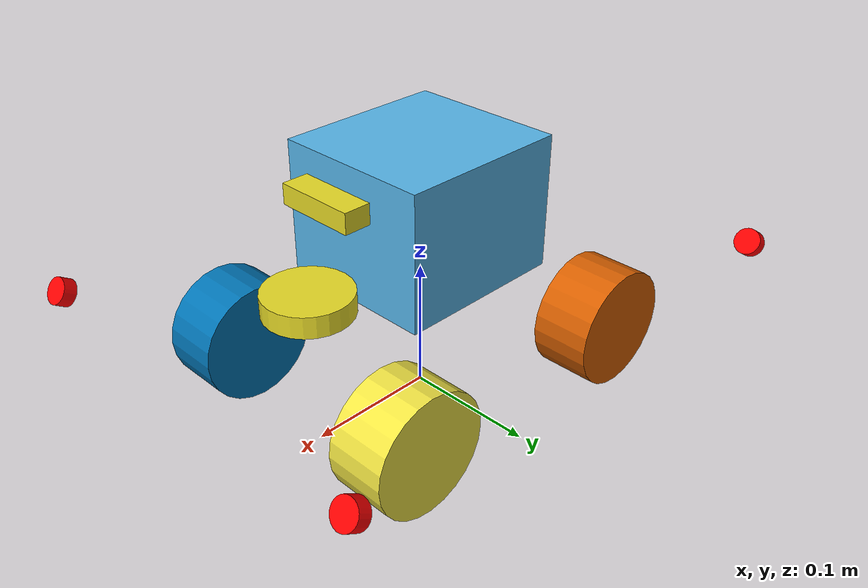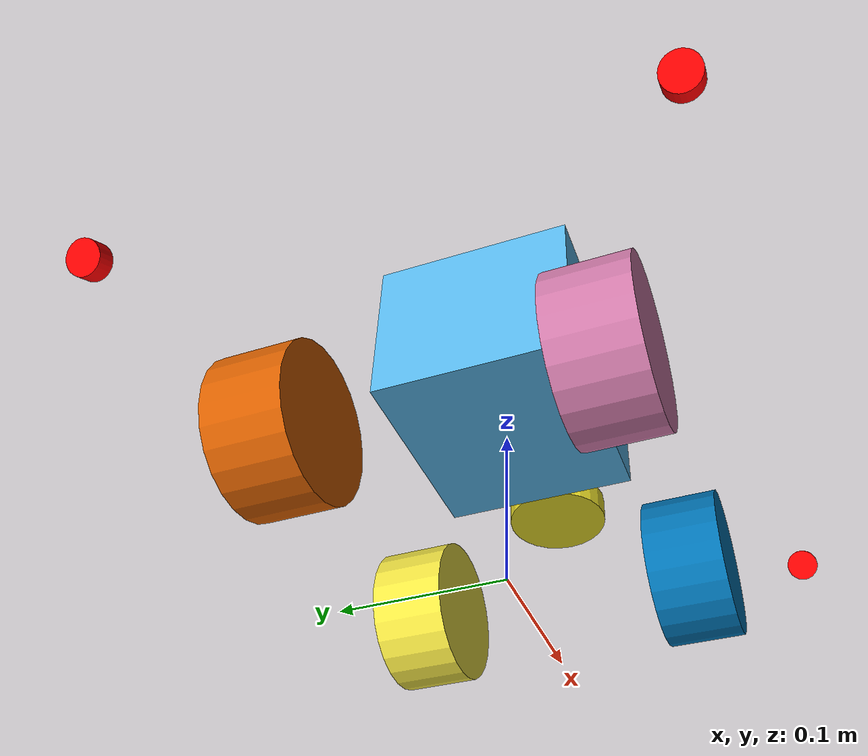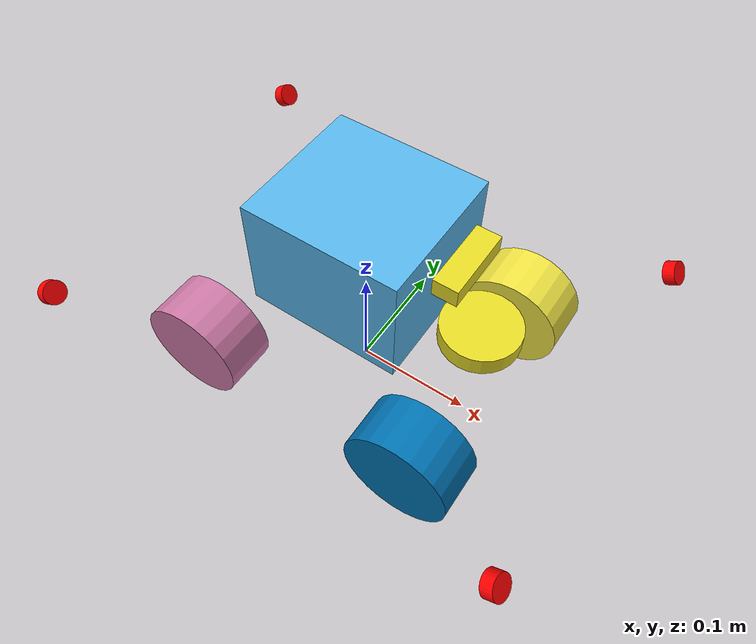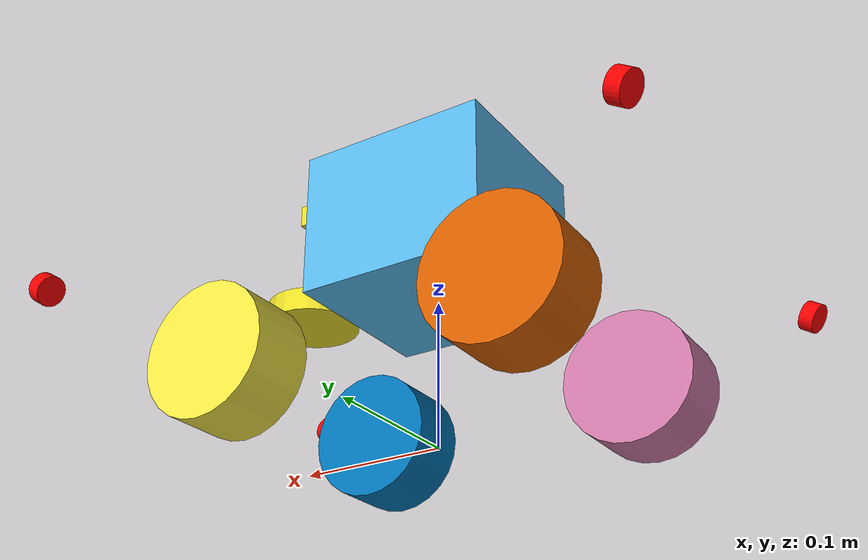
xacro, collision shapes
<?xml version="1.0"?>

<robot name="limo_four_diff" xmlns:xacro="http://ros.org/wiki/xacro">

    <xacro:include filename="$(find limo_description)/urdf/limo_xacro.xacro" />
    <xacro:include filename="$(find limo_description)/urdf/limo_four_diff.gazebo" />

    <!-- Variables -->
    <xacro:property name="M_PI" value="3.14159"/>

    <!-- Vehicle Geometries -->
    <xacro:property name="base_x_size" value="0.13" />
    <xacro:property name="base_y_size" value="0.12" />
    <xacro:property name="base_z_size" value="0.1" />

    <xacro:property name="wheelbase" value="0.2"/>
    <xacro:property name="track" value="0.13"/>
    <xacro:property name="wheel_vertical_offset" value="-0.10" />
    <xacro:property name="base_mass" value="2.1557"/>

    <xacro:property name="wheel_length" value="0.045" />
    <xacro:property name="wheel_radius" value="0.045" />
  <link name="base_footprint"/>

  <joint name="base_joint" type="fixed">
    <parent link="base_footprint"/>
    <child link="base_link"/>
    <origin xyz="0.0 0.0 0.15" rpy="0 0 0"/>
  </joint>
    <!-- Base link -->
    <link name="base_link">
        <visual>
            <origin xyz="0 0 -0.15" rpy="0 0 1.57" />
            <geometry>
                <mesh filename="package://limo_description/meshes/limo_base.dae" scale="1 1 1"/>
            </geometry>
        </visual>
        <collision>
            <!--origin xyz="0 0 -0.15" rpy="0 0 1.57" /-->
            <origin xyz="0 0 0" rpy="0 0 0" />
          <geometry>
              <box size="${base_x_size} ${base_y_size} ${base_z_size}"/>
          </geometry>
        </collision>
    </link>

    <link name="inertial_link">
        <inertial>
            <origin xyz="0.0 0.0 0.0" />
            <mass value="${base_mass}" />
            <inertia ixx="0.24" ixy="0" ixz="0"
                     iyy="0.96" iyz="0"
                     izz="0.96" />
        </inertial>
    </link>

    <joint name="inertial_joint" type="fixed">
        <origin xyz="0 0 0" rpy="0 0 0" />
        <parent link="base_link" />
        <child link="inertial_link" />
    </joint>
<link name="bumper_link">
    <inertial>
        <origin xyz="0.0 0.0 0.0" rpy="0 1.0 0"/>
        <mass value="0.0000000001"/>
        <inertia ixx="0.00000001" ixy="0.00000001" ixz="0.00000001" iyy="0.00000001" iyz="0.00000001" izz="0.00000001"/>
    </inertial>
    <visual>
        <origin xyz="0.0 0.0 0.0" rpy="0.0 1.0 0"/>
        <geometry>
            <cylinder radius="0.01" length="0.01"/>
        </geometry>
        <material name="red">
            <color rgba="1.0 0.0 0.0 1.0"/>
        </material>
    </visual>
    <collision name="base_collision">
        <origin xyz="0.0 0.0 0.0" rpy="0.0 1.0 0.0"/>
        <geometry>
            <cylinder radius="0.01" length="0.01"/>
        </geometry>
    </collision>
  </link>
  <joint name="bumper_joint" type="fixed">
      <origin xyz="0.2 0.15 -0.05" rpy="0.0 0.0 0.0"/>
      <parent link="base_link"/>
      <child link="bumper_link"/>
  </joint>
  <link name="bumper_1_link">
    <inertial>
        <origin xyz="0.0 0.0 0.0" rpy="0 1.0 0"/>
        <mass value="0.0000000001"/>
        <inertia ixx="0.00000001" ixy="0.00000001" ixz="0.00000001" iyy="0.00000001" iyz="0.00000001" izz="0.00000001"/>
    </inertial>
    <visual>
        <origin xyz="0.0 0.0 0.0" rpy="0.0 1.0 0"/>
        <geometry>
            <cylinder radius="0.01" length="0.01"/>
        </geometry>
        <material name="red">
            <color rgba="1.0 0.0 0.0 1.0"/>
        </material>
    </visual>
    <collision name="base_collision">
        <origin xyz="0.0 0.0 0.0" rpy="0.0 1.0 0.0"/>
        <geometry>
            <cylinder radius="0.01" length="0.01"/>
        </geometry>
    </collision>
  </link>
  <joint name="bumper_1_joint" type="fixed">
      <origin xyz="-0.2 0.15 -0.05" rpy="0.0 0.0 0.0"/>
      <parent link="base_link"/>
      <child link="bumper_1_link"/>
    </joint>
    <link name="bumper_2_link">
    <inertial>
        <origin xyz="0.0 0.0 0.0" rpy="0 1.0 0"/>
        <mass value="0.0000000001"/>
        <inertia ixx="0.00000001" ixy="0.00000001" ixz="0.00000001" iyy="0.00000001" iyz="0.00000001" izz="0.00000001"/>
    </inertial>
    <visual>
        <origin xyz="0.0 0.0 0.0" rpy="0.0 1.0 0"/>
        <geometry>
            <cylinder radius="0.01" length="0.01"/>
        </geometry>
        <material name="red">
            <color rgba="1.0 0.0 0.0 1.0"/>
        </material>
    </visual>
    <collision name="base_collision">
        <origin xyz="0.0 0.0 0.0" rpy="0.0 1.0 0.0"/>
        <geometry>
            <cylinder radius="0.01" length="0.01"/>
        </geometry>
    </collision>
  </link>
  <joint name="bumper_2_joint" type="fixed">
      <origin xyz="0.2 -0.15 -0.05" rpy="0.0 0.0 0.0"/>
      <parent link="base_link"/>
      <child link="bumper_2_link"/>
    </joint>
      <link name="bumper_3_link">
    <inertial>
        <origin xyz="0.0 0.0 0.0" rpy="0 1.0 0"/>
        <mass value="0.0000000001"/>
        <inertia ixx="0.00000001" ixy="0.00000001" ixz="0.00000001" iyy="0.00000001" iyz="0.00000001" izz="0.00000001"/>
    </inertial>
    <visual>
        <origin xyz="0.0 0.0 0.0" rpy="0.0 1.0 0"/>
        <geometry>
            <cylinder radius="0.01" length="0.01"/>
        </geometry>
        <material name="red">
            <color rgba="1.0 0.0 0.0 1.0"/>
        </material>
    </visual>
    <collision name="base_collision">
        <origin xyz="0.0 0.0 0.0" rpy="0.0 1.0 0.0"/>
        <geometry>
            <cylinder radius="0.01" length="0.01"/>
        </geometry>
    </collision>
  </link>
  <joint name="bumper_3_joint" type="fixed">
      <origin xyz="-0.2 -0.15 -0.05" rpy="0.0 0.0 0.0"/>
      <parent link="base_link"/>
      <child link="bumper_3_link"/>
    </joint>
    <xacro:limo_laser parent_prefix="base_link" frame_prefix="laser">
        <origin xyz="0.103 0 -0.034" rpy="0 0 0"/>
    </xacro:limo_laser>

    <xacro:limo_depth_camera parent_prefix="base_link" frame_prefix="depth_camera">
        <origin xyz="0.084 0 0.03" rpy="0 0 0"/>
    </xacro:limo_depth_camera>

    <xacro:limo_imu parent_prefix="base_link" frame_prefix="imu">
        <origin xyz="0.0 0 -0.1" rpy="0 0 0"/>
    </xacro:limo_imu>

    <xacro:limo_wheel parent_prefix="base_link" wheel_prefix="front_left" reflect="1">
        <origin xyz="${wheelbase/2} ${track/2} ${wheel_vertical_offset}" rpy="0 0  0" />
    </xacro:limo_wheel>

    <xacro:limo_wheel parent_prefix="base_link" wheel_prefix="front_right" reflect="-1">
        <origin xyz="${wheelbase/2} ${-track/2} ${wheel_vertical_offset}" rpy="${M_PI} 0 0" />
    </xacro:limo_wheel>

    <xacro:limo_wheel parent_prefix="base_link" wheel_prefix="rear_left" reflect="1">
        <origin xyz="${-wheelbase/2} ${track/2} ${wheel_vertical_offset}" rpy="0 0 0" />
    </xacro:limo_wheel>

    <xacro:limo_wheel parent_prefix="base_link" wheel_prefix="rear_right" reflect="-1">
        <origin xyz="${-wheelbase/2} ${-track/2} ${wheel_vertical_offset}" rpy="${M_PI} 0 0" />
    </xacro:limo_wheel>
</robot>

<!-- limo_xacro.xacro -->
<robot name="limo_xacro" xmlns:xacro="http://ros.org/wiki/xacro">
    <xacro:macro name="limo_wheel" params="parent_prefix wheel_prefix reflect *joint_pose">
        <link name="${wheel_prefix}_wheel_link">
            <inertial>
                <origin xyz="0 0 0" />
                <mass value="0.5" />
                <inertia ixx="0.01055" ixy="0" ixz="0" iyy="0.00075" iyz="0" izz="0.01055" />
            </inertial>
            <visual>
                <origin xyz="0 0 0" rpy="0 0 0" />
                <geometry>
                    <mesh filename="package://limo_description/meshes/limo_wheel.dae" />
                </geometry>
            </visual>
            <collision>
              <origin xyz="0 ${wheel_length/2} 0" rpy="1.57 0 0" />
              <geometry>
                  <cylinder length="${wheel_length}" radius="${wheel_radius}" />
              </geometry>
            </collision>
        </link>

        <joint name="${wheel_prefix}_wheel" type="continuous">
            <parent link="${parent_prefix}"/>
            <child link="${wheel_prefix}_wheel_link"/>
            <xacro:insert_block name="joint_pose"/>
            <axis xyz="0 ${reflect*1} 0"/>
        </joint>
    </xacro:macro>

    <xacro:macro name="limo_laser" params="parent_prefix frame_prefix *joint_pose">
        <link name='${frame_prefix}_link'>
            <pose>0 0 0 0 0 0</pose>
            <inertial>
                <mass value="0.1"/>
                <origin xyz="0.0 0 0" rpy="0 0 0"/>
                <inertia
                    ixx="1e-6" ixy="0" ixz="0"
                    iyy="1e-6" iyz="0"
                    izz="1e-6"
                />
            </inertial>
            <visual name='laser_visual'>
                <origin xyz="0 0 0" rpy="0 0 0"/>
                <geometry>
                    <cylinder radius="0.02" length="0.01"/>
                </geometry>
                <material name='laser_material'>
                    <ambient>0.1 0.1 0.1 1</ambient>
                    <diffuse>0.1 0.1 0.2 1</diffuse>
                    <specular>0 0 0 0</specular>
                    <emissive>0 0 0 1</emissive>
                </material>
            </visual>
            <collision name='laser_collision'>
                <origin xyz="0 0 0" rpy="0 0 0"/>
                <geometry>
                    <cylinder radius="0.032" length="0.016"/>
                </geometry>
            </collision>
        </link>
        <joint type="fixed" name="laser_joint">
            <xacro:insert_block name="joint_pose"/>
            <child link="${frame_prefix}_link"/>
            <parent link="${parent_prefix}"/>
        </joint>
        <gazebo reference="${frame_prefix}_link">
            <material>Gazebo/Yellow</material>
        </gazebo>
    </xacro:macro>

    <xacro:macro name="limo_depth_camera" params="parent_prefix frame_prefix *joint_pose">
        <link name='${frame_prefix}_link'>
            <pose>0 0 0 0 0 0</pose>
            <inertial>
                <mass value="0.1"/>
                <origin xyz="0.0 0 0" rpy="0 0 0"/>
                <inertia
                    ixx="1e-6" ixy="0" ixz="0"
                    iyy="1e-6" iyz="0"
                    izz="1e-6"
                />
            </inertial>
            <visual name='depth_camera_visual'>
                <origin xyz="0 0 0" rpy="0 0 0"/>
                <geometry>
                    <box size="0.02 0.06 0.015"/>
                </geometry>
                <material name='depth_camera_material'>
                    <ambient>0.1 0.1 0.1 1</ambient>
                    <diffuse>0.1 0.1 0.2 1</diffuse>
                    <specular>0 0 0 0</specular>
                    <emissive>0 0 0 1</emissive>
                </material>
            </visual>
            <collision name='depth_camera_collision'>
                <origin xyz="0 0 0" rpy="0 0 0"/>
                <geometry>
                    <box size="0.02 0.06 0.015"/>
                </geometry>
            </collision>
        </link>

        <joint type="fixed" name="depth_camera_joint">
            <xacro:insert_block name="joint_pose"/>
            <child link="${frame_prefix}_link"/>
            <parent link="${parent_prefix}"/>
        </joint>
        <link name="depth_link"></link>

        <joint name="${frame_prefix}_to_camera_joint" type="fixed">
            <origin xyz="0 0 0" rpy="${-M_PI/2} 0 ${-M_PI/2} "/>
            <parent link="${frame_prefix}_link"/>
            <child link="depth_link"/>
          </joint>

        <gazebo reference="${frame_prefix}_link">
            <material>Gazebo/Yellow</material>
        </gazebo>
    </xacro:macro>

    <xacro:macro name="limo_imu" params="parent_prefix frame_prefix  *joint_pose">
        <link name='${frame_prefix}_link'>
            <pose>0 0 0 0 0 0</pose>
            <inertial>
                <mass value="0.01"/>
                <origin xyz="0.0 0 0" rpy="0 0 0"/>
                <inertia
                    ixx="1e-7" ixy="0" ixz="0"
                    iyy="1e-7" iyz="0"
                    izz="1e-7"
                />
            </inertial>
            <visual name='imu_visual'>
                <origin xyz="0 0 0" rpy="0 0 0"/>
                <geometry>
                    <box size="0.001 0.001 0.001"/>
                </geometry>
                <material name='imu_material'>
                    <ambient>0.1 0.1 0.1 1</ambient>
                    <diffuse>0.1 0.1 0.2 1</diffuse>
                    <specular>0 0 0 0</specular>
                    <emissive>0 0 0 1</emissive>
                </material>
            </visual>
            <collision name='imu_collision'>
                <origin xyz="0 0 0" rpy="0 0 0"/>
                <geometry>
                    <box size="0.001 0.001 0.001"/>
                </geometry>
            </collision>
        </link>
        <joint type="fixed" name="imu_joint">
            <xacro:insert_block name="joint_pose"/>
            <child link="${frame_prefix}_link"/>
            <parent link="${parent_prefix}"/>
        </joint>
        <gazebo reference="${frame_prefix}_link">
            <material>Gazebo/Yellow</material>
        </gazebo>
    </xacro:macro>

    <gazebo reference="bumper_link">
    <sensor name="contacts_1" type="contact">
        <contact>
          <collision>base_footprint_fixed_joint_lump__base_collision_collision_1</collision>
        </contact>
        <plugin name="gazebo_ros_bumper_controller" filename="libgazebo_ros_bumper.so">
          <always_on>true</always_on>
          <robotNamespace>/limo</robotNamespace>
          <bumperTopicName>bumper_states</bumperTopicName>
          <frameName>bumper</frameName>
          <visualize>true</visualize>
          <update_rate>50.0</update_rate>
        </plugin>
    </sensor>
    <material>Gazebo/Red</material>
    <mu1>0.1</mu1>
    <mu2>0.1</mu2>
    <gravity>true</gravity>
    <selfCollide>false</selfCollide>
  </gazebo>
  <gazebo reference="bumper_1_link">
    <sensor name="contacts_2" type="contact">
        <contact>
          <collision>base_footprint_fixed_joint_lump__base_collision_collision_2</collision>
        </contact>
        <plugin name="gazebo_ros_bumper_controller" filename="libgazebo_ros_bumper.so">
          <always_on>true</always_on>
          <robotNamespace>/limo</robotNamespace>
          <bumperTopicName>bumper_states_1</bumperTopicName>
          <frameName>bumper_1</frameName>
          <visualize>true</visualize>
          <update_rate>50.0</update_rate>
        </plugin>
    </sensor>
    <material>Gazebo/Red</material>
    <mu1>0.1</mu1>
    <mu2>0.1</mu2>
    <gravity>true</gravity>
    <selfCollide>false</selfCollide>
  </gazebo>
    <gazebo reference="bumper_2_link">
    <sensor name="contacts_3" type="contact">
        <contact>
          <collision>base_footprint_fixed_joint_lump__base_collision_collision_3</collision>
        </contact>
        <plugin name="gazebo_ros_bumper_controller" filename="libgazebo_ros_bumper.so">
          <always_on>true</always_on>
          <robotNamespace>/limo</robotNamespace>
          <bumperTopicName>bumper_states_2</bumperTopicName>
          <frameName>bumper_2</frameName>
          <visualize>true</visualize>
          <update_rate>50.0</update_rate>
        </plugin>
    </sensor>
    <material>Gazebo/Red</material>
    <mu1>0.1</mu1>
    <mu2>0.1</mu2>
    <gravity>true</gravity>
    <selfCollide>false</selfCollide>
  </gazebo>
    <gazebo reference="bumper_3_link">
    <sensor name="contacts_4" type="contact">
        <contact>
          <collision>base_footprint_fixed_joint_lump__base_collision_collision_4</collision>
        </contact>
        <plugin name="gazebo_ros_bumper_controller" filename="libgazebo_ros_bumper.so">
          <always_on>true</always_on>
          <robotNamespace>/limo</robotNamespace>
          <bumperTopicName>bumper_states_3</bumperTopicName>
          <frameName>bumper_3</frameName>
          <visualize>true</visualize>
          <update_rate>50.0</update_rate>
        </plugin>
    </sensor>
    <material>Gazebo/Red</material>
    <mu1>0.1</mu1>
    <mu2>0.1</mu2>
    <gravity>true</gravity>
    <selfCollide>false</selfCollide>
  </gazebo>
</robot>
